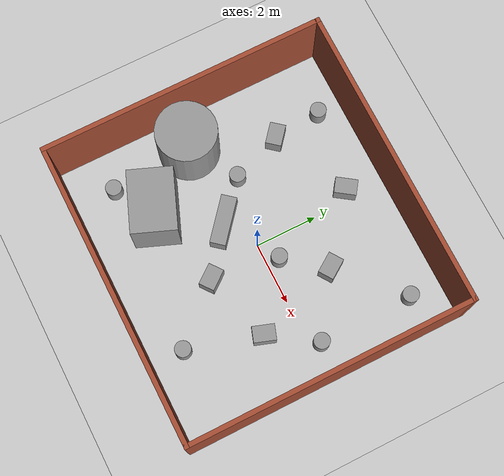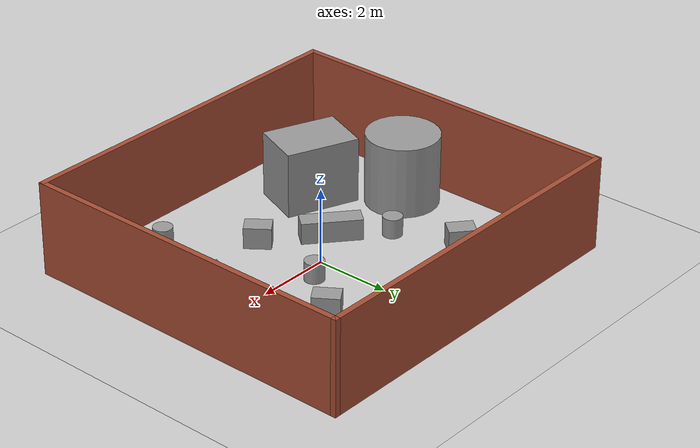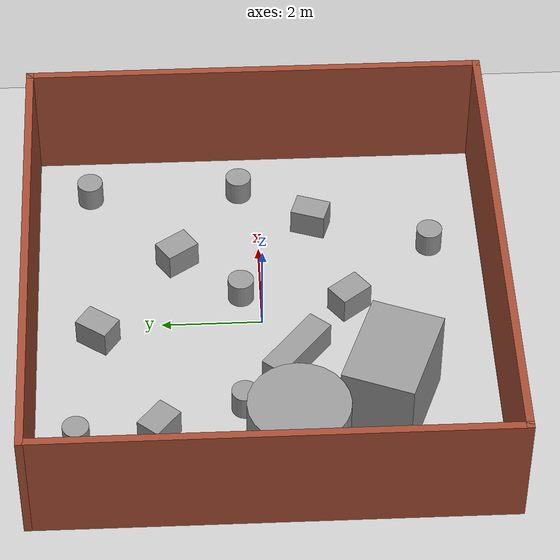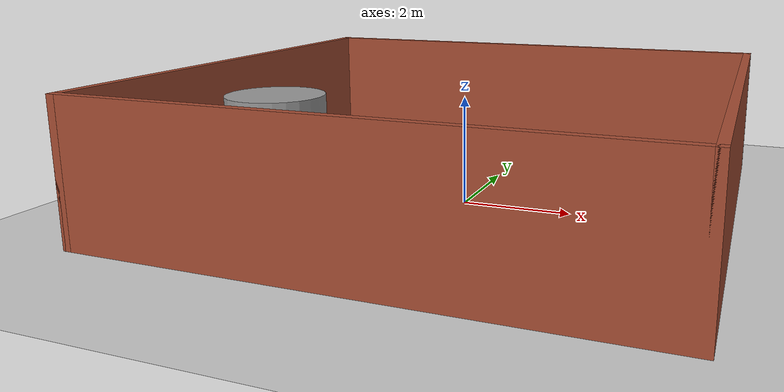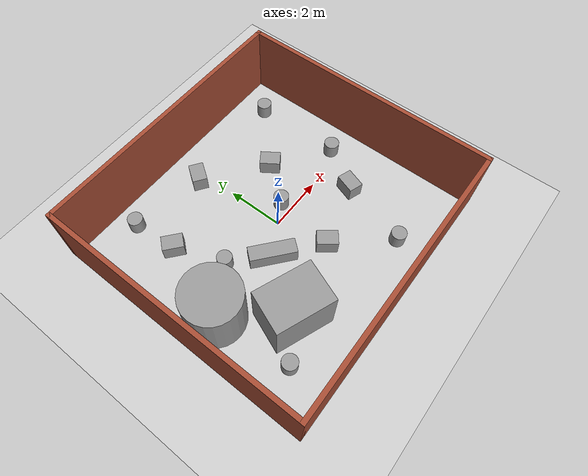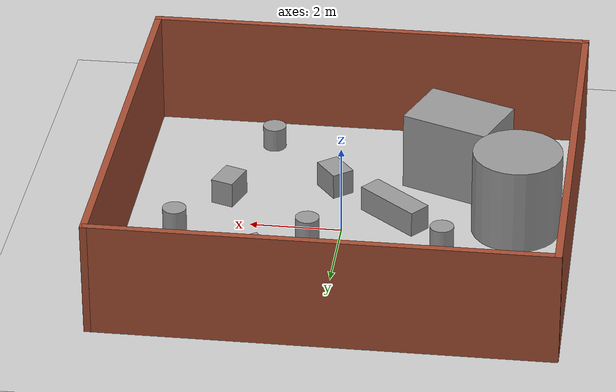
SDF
<sdf version="1.7">
 <world name="default">
  <light name="sun" type="directional">
   <pose>0 0 10 0 -0 0</pose>
   <diffuse>0.8 0.8 0.8 1</diffuse>
   <specular>0.1 0.1 0.1 1</specular>
   <attenuation>
    <range>1000</range>
    <constant>0.9</constant>
    <linear>0.01</linear>
    <quadratic>0.001</quadratic>
   </attenuation>
   <direction>-0.5 0.5 -1</direction>
   <spot><inner_angle>0</inner_angle><outer_angle>0</outer_angle><falloff>0</falloff></spot>
  </light>
  <model name="ground_plane">
   <static>1</static>
   <link name="link">
    <collision name="collision">
     <geometry><plane><normal>0 0 1</normal><size>100 100</size></plane></geometry>
     <surface><friction><ode><mu>100</mu><mu2>50</mu2></ode></friction></surface>
    </collision>
    <visual name="visual">
     <cast_shadows>0</cast_shadows>
     <geometry><plane><normal>0 0 1</normal><size>100 100</size></plane></geometry>
     <material>
      <script><uri>file://media/materials/scripts/gazebo.material</uri><name>Gazebo/Grey</name></script>
     </material>
    </visual>
   </link>
  </model>
  <gravity>0 0 -9.8</gravity>
  <magnetic_field>6e-06 2.3e-05 -4.2e-05</magnetic_field>
  <atmosphere type="adiabatic"/>
  <physics name="default_physics" default="0" type="ode">
   <max_step_size>0.001</max_step_size>
   <real_time_factor>1</real_time_factor>
   <real_time_update_rate>1000</real_time_update_rate>
  </physics>
  <scene><ambient>0.4 0.4 0.4 1</ambient><background>0.7 0.7 0.7 1</background><shadows>1</shadows></scene>
  <spherical_coordinates>
   <surface_model>EARTH_WGS84</surface_model>
   <latitude_deg>0</latitude_deg>
   <longitude_deg>0</longitude_deg>
   <elevation>0</elevation>
   <heading_deg>0</heading_deg>
  </spherical_coordinates>
  <model name="turtlebot3_obstacles">
   <pose>-0.102162 -0.01747 0 0 -0 0</pose>
   <link name="Wall_0">
    <collision name="Wall_0_Collision">
     <geometry><box><size>9.75 0.15 2.5</size></box></geometry>
     <pose>0 0 1.25 0 -0 0</pose>
    </collision>
    <visual name="Wall_0_Visual">
     <pose>0 0 1.25 0 -0 0</pose>
     <geometry><box><size>9.75 0.15 2.5</size></box></geometry>
     <material>
      <script><uri>file://media/materials/scripts/gazebo.material</uri><name>Gazebo/Bricks</name></script>
      <ambient>1 1 1 1</ambient>
     </material>
    </visual>
    <pose>0 -4.55 0 0 -0 0</pose>
   </link>
   <link name="Wall_2">
    <collision name="Wall_2_Collision">
     <geometry><box><size>9.25 0.15 2.5</size></box></geometry>
     <pose>0 0 1.25 0 -0 0</pose>
    </collision>
    <visual name="Wall_2_Visual">
     <pose>0 0 1.25 0 -0 0</pose>
     <geometry><box><size>9.25 0.15 2.5</size></box></geometry>
     <material>
      <script><uri>file://media/materials/scripts/gazebo.material</uri><name>Gazebo/Bricks</name></script>
      <ambient>1 1 1 1</ambient>
     </material>
    </visual>
    <pose>4.8 0 0 0 -0 1.5708</pose>
   </link>
   <link name="Wall_3">
    <collision name="Wall_3_Collision">
     <geometry><box><size>9.75 0.15 2.5</size></box></geometry>
     <pose>0 0 1.25 0 -0 0</pose>
    </collision>
    <visual name="Wall_3_Visual">
     <pose>0 0 1.25 0 -0 0</pose>
     <geometry><box><size>9.75 0.15 2.5</size></box></geometry>
     <material>
      <script><uri>file://media/materials/scripts/gazebo.material</uri><name>Gazebo/Bricks</name></script>
      <ambient>1 1 1 1</ambient>
     </material>
    </visual>
    <pose>0 4.55 0 0 -0 3.14159</pose>
   </link>
   <link name="Wall_4">
    <collision name="Wall_4_Collision">
     <geometry><box><size>9.25 0.15 2.5</size></box></geometry>
     <pose>0 0 1.25 0 -0 0</pose>
    </collision>
    <visual name="Wall_4_Visual">
     <pose>0 0 1.25 0 -0 0</pose>
     <geometry><box><size>9.25 0.15 2.5</size></box></geometry>
     <material>
      <script><uri>file://media/materials/scripts/gazebo.material</uri><name>Gazebo/Bricks</name></script>
      <ambient>1 1 1 1</ambient>
     </material>
    </visual>
    <pose>-4.8 0 0 0 0 -1.5708</pose>
   </link>
   <static>1</static>
  </model>
  <model name="unit_box_0_0">
   <pose>-2.29537 -2.35338 0.879629 0 5e-06 -0.375704</pose>
   <link name="link">
    <inertial>
     <mass>1</mass>
     <inertia>
      <ixx>0.166667</ixx>
      <ixy>0</ixy>
      <ixz>0</ixz>
      <iyy>0.166667</iyy>
      <iyz>0</iyz>
      <izz>0.166667</izz>
     </inertia>
    </inertial>
    <collision name="collision"><geometry><box><size>1.9848 1.42631 1.75927</size></box></geometry></collision>
    <visual name="visual">
     <geometry><box><size>1.9848 1.42631 1.75927</size></box></geometry>
     <material>
      <script><name>Gazebo/Grey</name><uri>file://media/materials/scripts/gazebo.material</uri></script>
     </material>
    </visual>
   </link>
  </model>
  <model name="unit_box_0_0_clone">
   <pose>0.35218 -1.73918 0.284207 0 -0 0.654692</pose>
   <link name="link">
    <inertial>
     <mass>1</mass>
     <inertia>
      <ixx>0.166667</ixx>
      <ixy>0</ixy>
      <ixz>0</ixz>
      <iyy>0.166667</iyy>
      <iyz>0</iyz>
      <izz>0.166667</izz>
     </inertia>
    </inertial>
    <collision name="collision">
     <geometry><box><size>0.503829 0.701108 0.568415</size></box></geometry>
    </collision>
    <visual name="visual">
     <geometry><box><size>0.503829 0.701108 0.568415</size></box></geometry>
     <material>
      <script><name>Gazebo/Grey</name><uri>file://media/materials/scripts/gazebo.material</uri></script>
     </material>
    </visual>
   </link>
  </model>
  <model name="unit_box_0_0_clone_0">
   <pose>1.68055 1.65741 0.284207 0 -0 0.597477</pose>
   <link name="link">
    <inertial>
     <mass>1</mass>
     <inertia>
      <ixx>0.166667</ixx>
      <ixy>0</ixy>
      <ixz>0</ixz>
      <iyy>0.166667</iyy>
      <iyz>0</iyz>
      <izz>0.166667</izz>
     </inertia>
    </inertial>
    <collision name="collision">
     <geometry><box><size>0.503829 0.701108 0.568415</size></box></geometry>
    </collision>
    <visual name="visual">
     <geometry><box><size>0.503829 0.701108 0.568415</size></box></geometry>
     <material>
      <script><name>Gazebo/Grey</name><uri>file://media/materials/scripts/gazebo.material</uri></script>
     </material>
    </visual>
   </link>
  </model>
  <model name="unit_box_0_0_clone_1">
   <pose>2.60633 -1.09095 0.284207 0 0 -0.331025</pose>
   <link name="link">
    <inertial>
     <mass>1</mass>
     <inertia>
      <ixx>0.166667</ixx>
      <ixy>0</ixy>
      <ixz>0</ixz>
      <iyy>0.166667</iyy>
      <iyz>0</iyz>
      <izz>0.166667</izz>
     </inertia>
    </inertial>
    <collision name="collision">
     <geometry><box><size>0.503829 0.701108 0.568415</size></box></geometry>
    </collision>
    <visual name="visual">
     <geometry><box><size>0.503829 0.701108 0.568415</size></box></geometry>
     <material>
      <script><name>Gazebo/Grey</name><uri>file://media/materials/scripts/gazebo.material</uri></script>
     </material>
    </visual>
   </link>
  </model>
  <model name="unit_box_0_0_clone_2">
   <pose>-2.83144 2.08031 0.284207 0 -0 0.87547</pose>
   <link name="link">
    <inertial>
     <mass>1</mass>
     <inertia>
      <ixx>0.166667</ixx>
      <ixy>0</ixy>
      <ixz>0</ixz>
      <iyy>0.166667</iyy>
      <iyz>0</iyz>
      <izz>0.166667</izz>
     </inertia>
    </inertial>
    <collision name="collision">
     <geometry><box><size>0.503829 0.701108 0.568415</size></box></geometry>
    </collision>
    <visual name="visual">
     <geometry><box><size>0.503829 0.701108 0.568415</size></box></geometry>
     <material>
      <script><name>Gazebo/Grey</name><uri>file://media/materials/scripts/gazebo.material</uri></script>
     </material>
    </visual>
   </link>
  </model>
  <model name="unit_box_0_0_clone_3">
   <pose>-0.337106 3.24714 0.284207 0 0 -0.608191</pose>
   <link name="link">
    <inertial>
     <mass>1</mass>
     <inertia>
      <ixx>0.166667</ixx>
      <ixy>0</ixy>
      <ixz>0</ixz>
      <iyy>0.166667</iyy>
      <iyz>0</iyz>
      <izz>0.166667</izz>
     </inertia>
    </inertial>
    <collision name="collision">
     <geometry><box><size>0.503829 0.701108 0.568415</size></box></geometry>
    </collision>
    <visual name="visual">
     <geometry><box><size>0.503829 0.701108 0.568415</size></box></geometry>
     <material>
      <script><name>Gazebo/Grey</name><uri>file://media/materials/scripts/gazebo.material</uri></script>
     </material>
    </visual>
   </link>
  </model>
  <model name="unit_cylinder_0_0">
   <pose>-3.72131 -0.51505 0.954321 0 -0 0</pose>
   <link name="link">
    <inertial>
     <mass>1</mass>
     <inertia><ixx>0.145833</ixx><ixy>0</ixy><ixz>0</ixz><iyy>0.145833</iyy><iyz>0</iyz><izz>0.125</izz></inertia>
    </inertial>
    <collision name="collision">
     <geometry><cylinder><radius>0.968132</radius><length>1.90864</length></cylinder></geometry>
    </collision>
    <visual name="visual">
     <geometry><cylinder><radius>0.968132</radius><length>1.90864</length></cylinder></geometry>
     <material>
      <script><name>Gazebo/Grey</name><uri>file://media/materials/scripts/gazebo.material</uri></script>
     </material>
    </visual>
   </link>
  </model>
  <model name="unit_cylinder_0_0_clone">
   <pose>-2.20526 0.430856 0.261958 0 -0 0</pose>
   <link name="link">
    <inertial>
     <mass>1</mass>
     <inertia><ixx>0.145833</ixx><ixy>0</ixy><ixz>0</ixz><iyy>0.145833</iyy><iyz>0</iyz><izz>0.125</izz></inertia>
    </inertial>
    <collision name="collision">
     <geometry><cylinder><radius>0.258229</radius><length>0.523932</length></cylinder></geometry>
    </collision>
    <visual name="visual">
     <geometry><cylinder><radius>0.258229</radius><length>0.523932</length></cylinder></geometry>
     <material>
      <script><name>Gazebo/Grey</name><uri>file://media/materials/scripts/gazebo.material</uri></script>
     </material>
    </visual>
   </link>
  </model>
  <model name="unit_cylinder_0_0_clone_0">
   <pose>0.693053 0.402911 0.261958 0 -0 0</pose>
   <link name="link">
    <inertial>
     <mass>1</mass>
     <inertia><ixx>0.145833</ixx><ixy>0</ixy><ixz>0</ixz><iyy>0.145833</iyy><iyz>0</iyz><izz>0.125</izz></inertia>
    </inertial>
    <collision name="collision">
     <geometry><cylinder><radius>0.258229</radius><length>0.523932</length></cylinder></geometry>
    </collision>
    <visual name="visual">
     <geometry><cylinder><radius>0.258229</radius><length>0.523932</length></cylinder></geometry>
     <material>
      <script><name>Gazebo/Grey</name><uri>file://media/materials/scripts/gazebo.material</uri></script>
     </material>
    </visual>
   </link>
  </model>
  <model name="unit_cylinder_0_0_clone_1">
   <pose>1.92936 -3.46333 0.261958 0 -0 0</pose>
   <link name="link">
    <inertial>
     <mass>1</mass>
     <inertia><ixx>0.145833</ixx><ixy>0</ixy><ixz>0</ixz><iyy>0.145833</iyy><iyz>0</iyz><izz>0.125</izz></inertia>
    </inertial>
    <collision name="collision">
     <geometry><cylinder><radius>0.258229</radius><length>0.523932</length></cylinder></geometry>
    </collision>
    <visual name="visual">
     <geometry><cylinder><radius>0.258229</radius><length>0.523932</length></cylinder></geometry>
     <material>
      <script><name>Gazebo/Grey</name><uri>file://media/materials/scripts/gazebo.material</uri></script>
     </material>
    </visual>
   </link>
  </model>
  <model name="unit_cylinder_0_0_clone_2">
   <pose>3.54563 3.40957 0.261963 0 -0 0</pose>
   <link name="link">
    <inertial>
     <mass>1</mass>
     <inertia><ixx>0.145833</ixx><ixy>0</ixy><ixz>0</ixz><iyy>0.145833</iyy><iyz>0</iyz><izz>0.125</izz></inertia>
    </inertial>
    <collision name="collision">
     <geometry><cylinder><radius>0.258229</radius><length>0.523932</length></cylinder></geometry>
    </collision>
    <visual name="visual">
     <geometry><cylinder><radius>0.258229</radius><length>0.523932</length></cylinder></geometry>
     <material>
      <script><name>Gazebo/Grey</name><uri>file://media/materials/scripts/gazebo.material</uri></script>
     </material>
    </visual>
   </link>
  </model>
  <model name="unit_cylinder_0_0_clone_3">
   <pose>3.58153 0.351716 0.261958 0 -0 0</pose>
   <link name="link">
    <inertial>
     <mass>1</mass>
     <inertia><ixx>0.145833</ixx><ixy>0</ixy><ixz>0</ixz><iyy>0.145833</iyy><iyz>0</iyz><izz>0.125</izz></inertia>
    </inertial>
    <collision name="collision">
     <geometry><cylinder><radius>0.258229</radius><length>0.523932</length></cylinder></geometry>
    </collision>
    <visual name="visual">
     <geometry><cylinder><radius>0.258229</radius><length>0.523932</length></cylinder></geometry>
     <material>
      <script><name>Gazebo/Grey</name><uri>file://media/materials/scripts/gazebo.material</uri></script>
     </material>
    </visual>
   </link>
  </model>
  <model name="unit_cylinder_0_0_clone_4">
   <pose>-3.5487 -3.18402 0.261963 0 -0 0</pose>
   <link name="link">
    <inertial>
     <mass>1</mass>
     <inertia><ixx>0.145833</ixx><ixy>0</ixy><ixz>0</ixz><iyy>0.145833</iyy><iyz>0</iyz><izz>0.125</izz></inertia>
    </inertial>
    <collision name="collision">
     <geometry><cylinder><radius>0.258229</radius><length>0.523932</length></cylinder></geometry>
    </collision>
    <visual name="visual">
     <geometry><cylinder><radius>0.258229</radius><length>0.523932</length></cylinder></geometry>
     <material>
      <script><name>Gazebo/Grey</name><uri>file://media/materials/scripts/gazebo.material</uri></script>
     </material>
    </visual>
   </link>
  </model>
  <model name="unit_cylinder_0_0_clone_5">
   <pose>-2.95676 3.65433 0.261959 0 -0 0</pose>
   <link name="link">
    <inertial>
     <mass>1</mass>
     <inertia><ixx>0.145833</ixx><ixy>0</ixy><ixz>0</ixz><iyy>0.145833</iyy><iyz>0</iyz><izz>0.125</izz></inertia>
    </inertial>
    <collision name="collision">
     <geometry><cylinder><radius>0.258229</radius><length>0.523932</length></cylinder></geometry>
    </collision>
    <visual name="visual">
     <geometry><cylinder><radius>0.258229</radius><length>0.523932</length></cylinder></geometry>
     <material>
      <script><name>Gazebo/Grey</name><uri>file://media/materials/scripts/gazebo.material</uri></script>
     </material>
    </visual>
   </link>
  </model>
  <model name="unit_box_0_0_clone_2_clone">
   <pose>-1.08013 -0.615512 0.284207 0 -0 0.87547</pose>
   <link name="link">
    <inertial>
     <mass>1</mass>
     <inertia>
      <ixx>0.166667</ixx>
      <ixy>0</ixy>
      <ixz>0</ixz>
      <iyy>0.166667</iyy>
      <iyz>0</iyz>
      <izz>0.166667</izz>
     </inertia>
    </inertial>
    <collision name="collision"><geometry><box><size>0.503829 1.56127 0.568415</size></box></geometry></collision>
    <visual name="visual">
     <geometry><box><size>0.503829 1.56127 0.568415</size></box></geometry>
     <material>
      <script><name>Gazebo/Grey</name><uri>file://media/materials/scripts/gazebo.material</uri></script>
     </material>
    </visual>
   </link>
  </model>
 </world>
</sdf>
